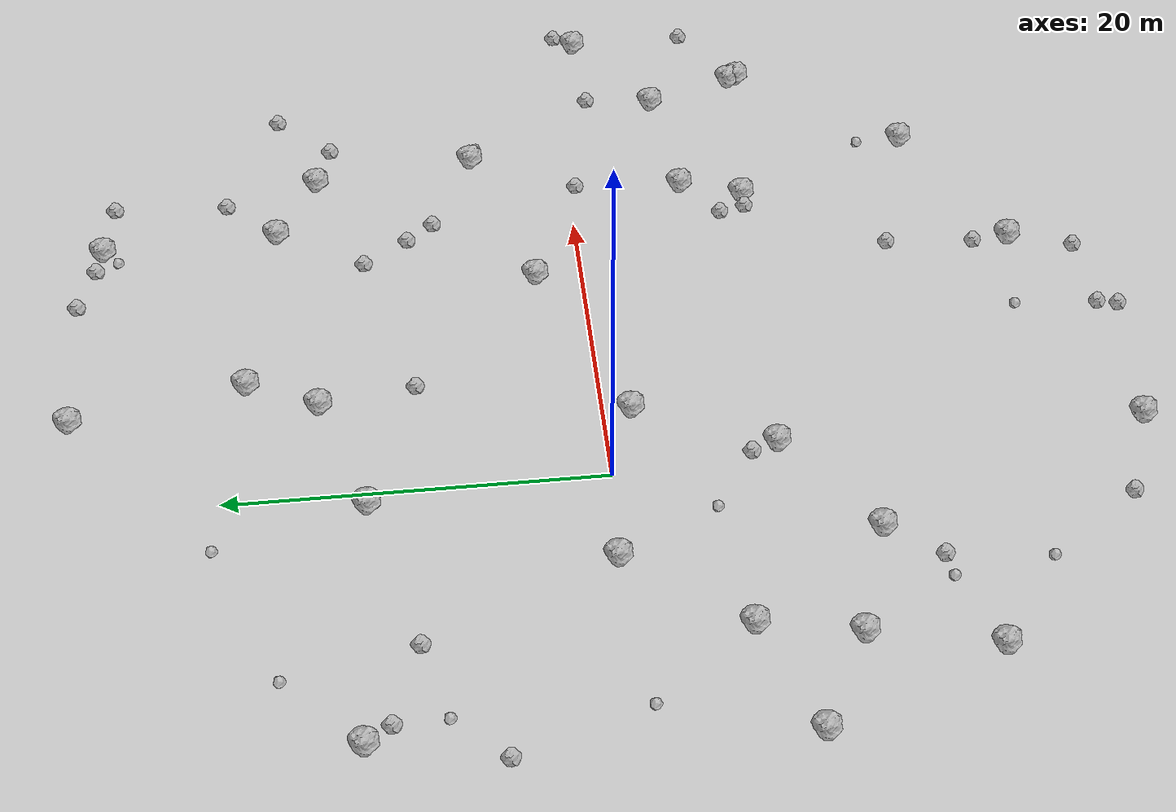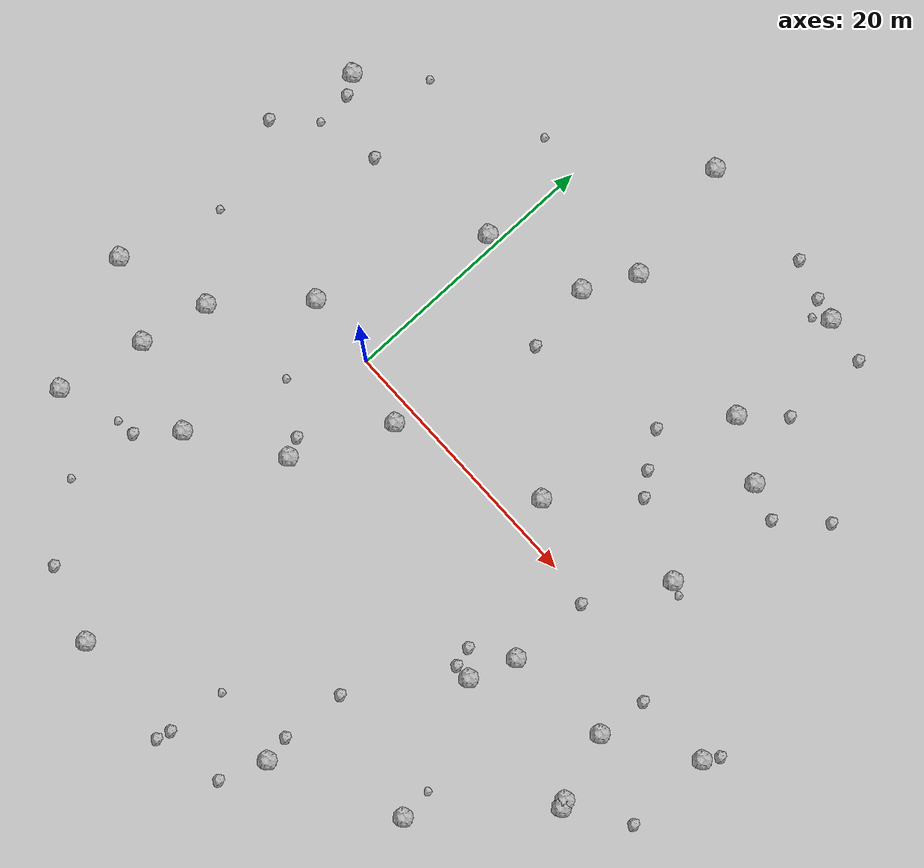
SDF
<sdf version="1.6">
 <world name="default">
  <include><uri>model://custom_ground</uri></include>
  <include><uri>model://sun</uri></include>
  <model name="rock1_0_0">
   <include><uri>model://rock1</uri><pose>-10.692950199762558 -5.694262957405197 0.5 0 0 0</pose></include>
  </model>
  <model name="rock1_0_1">
   <include><uri>model://rock1</uri><pose>-5.658957325771137 0.3496676300299022 0.5 0 0 0</pose></include>
  </model>
  <model name="rock1_0_2">
   <include><uri>model://rock1</uri><pose>30.878403765775516 -5.665382515572148 0.5 0 0 0</pose></include>
  </model>
  <model name="rock1_0_3">
   <include><uri>model://rock1</uri><pose>26.424663385686443 5.518385392285893 0.5 0 0 0</pose></include>
  </model>
  <model name="rock1_0_4">
   <include><uri>model://rock1</uri><pose>15.792059588464603 2.5856343237582777 0.5 0 0 0</pose></include>
  </model>
  <model name="rock1_0_5">
   <include><uri>model://rock1</uri><pose>-13.246311408103328 -17.461088309241497 0.5 0 0 0</pose></include>
  </model>
  <model name="rock1_0_6">
   <include><uri>model://rock1</uri><pose>32.86758371201801 -11.185259424336287 0.5 0 0 0</pose></include>
  </model>
  <model name="rock1_0_7">
   <include><uri>model://rock1</uri><pose>6.664325097783895 27.88895149416907 0.5 0 0 0</pose></include>
  </model>
  <model name="rock1_0_8">
   <include><uri>model://rock1</uri><pose>16.38198587627363 -24.299359834836338 0.5 0 0 0</pose></include>
  </model>
  <model name="rock1_0_9">
   <include><uri>model://rock1</uri><pose>-5.057398701653746 -13.02554828046047 0.5 0 0 0</pose></include>
  </model>
  <model name="rock1_0_10">
   <include><uri>model://rock1</uri><pose>37.102194280965264 -1.5785365843967547 0.5 0 0 0</pose></include>
  </model>
  <model name="rock1_0_11">
   <include><uri>model://rock1</uri><pose>-11.791469590583024 -10.871575741071794 0.5 0 0 0</pose></include>
  </model>
  <model name="rock1_0_12">
   <include><uri>model://rock1</uri><pose>25.21956386524247 14.537611340151152 0.5 0 0 0</pose></include>
  </model>
  <model name="rock1_0_13">
   <include><uri>model://rock1</uri><pose>6.656771046944733 14.855830301617786 0.5 0 0 0</pose></include>
  </model>
  <model name="rock1_0_14">
   <include><uri>model://rock1</uri><pose>21.70451540708693 -9.872676406908322 0.5 0 0 0</pose></include>
  </model>
  <model name="rock1_0_15">
   <include><uri>model://rock1</uri><pose>-17.426758880507297 -8.006383764174984 0.5 0 0 0</pose></include>
  </model>
  <model name="rock1_0_16">
   <include><uri>model://rock1</uri><pose>22.939439406477796 -6.421791323966318 0.5 0 0 0</pose></include>
  </model>
  <model name="rock1_0_17">
   <include><uri>model://rock1</uri><pose>32.63290824903232 -10.668047906462363 0.5 0 0 0</pose></include>
  </model>
  <model name="rock1_0_18">
   <include><uri>model://rock1</uri><pose>1.4147852863394341 -8.720429549901645 0.5 0 0 0</pose></include>
  </model>
  <model name="rock1_0_19">
   <include><uri>model://rock1</uri><pose>8.562848650976996 18.650020384750334 0.5 0 0 0</pose></include>
  </model>
  <model name="rock1_0_20">
   <include><uri>model://rock1</uri><pose>4.707206123170696 -1.466832553625757 0.5 0 0 0</pose></include>
  </model>
  <model name="rock1_0_21">
   <include><uri>model://rock1</uri><pose>1.4558374670019951 -28.152922369738672 0.5 0 0 0</pose></include>
  </model>
  <model name="rock1_0_22">
   <include><uri>model://rock1</uri><pose>25.827717625207548 -19.901970314157342 0.5 0 0 0</pose></include>
  </model>
  <model name="rock1_0_23">
   <include><uri>model://rock1</uri><pose>20.257392305057877 26.57839644833694 0.5 0 0 0</pose></include>
  </model>
  <model name="rock1_0_24">
   <include><uri>model://rock1</uri><pose>-0.7974680756264689 12.608215530764795 0.5 0 0 0</pose></include>
  </model>
  <model name="rock1_0_25">
   <include><uri>model://rock1</uri><pose>20.782729727890988 16.886980213893416 0.5 0 0 0</pose></include>
  </model>
  <model name="rock1_0_26">
   <include><uri>model://rock1</uri><pose>-16.04725043186187 13.31443039328935 0.5 0 0 0</pose></include>
  </model>
  <model name="rock2_0_0">
   <include><uri>model://rock2</uri><pose>20.638853235960738 8.050960482183392 0.3 0 0 0</pose></include>
  </model>
  <model name="rock2_0_1">
   <include><uri>model://rock2</uri><pose>15.073504178447884 -27.78170011377206 0.3 0 0 0</pose></include>
  </model>
  <model name="rock2_0_2">
   <include><uri>model://rock2</uri><pose>30.986093873417147 16.666447960035732 0.3 0 0 0</pose></include>
  </model>
  <model name="rock2_0_3">
   <include><uri>model://rock2</uri><pose>-4.100927348919681 -26.22483491121859 0.3 0 0 0</pose></include>
  </model>
  <model name="rock2_0_4">
   <include><uri>model://rock2</uri><pose>16.023490512058522 -22.260182657310477 0.3 0 0 0</pose></include>
  </model>
  <model name="rock2_0_5">
   <include><uri>model://rock2</uri><pose>15.5834325050471 27.84795376053181 0.3 0 0 0</pose></include>
  </model>
  <model name="rock2_0_6">
   <include><uri>model://rock2</uri><pose>-17.636892457093587 6.647243902127059 0.3 0 0 0</pose></include>
  </model>
  <model name="rock2_0_7">
   <include><uri>model://rock2</uri><pose>9.944081655393965 -29.04863635310034 0.3 0 0 0</pose></include>
  </model>
  <model name="rock2_0_8">
   <include><uri>model://rock2</uri><pose>17.59411086670591 12.048693455836002 0.3 0 0 0</pose></include>
  </model>
  <model name="rock2_0_9">
   <include><uri>model://rock2</uri><pose>37.168319434460045 -8.225393611736305 0.3 0 0 0</pose></include>
  </model>
  <model name="rock2_0_10">
   <include><uri>model://rock2</uri><pose>10.198484901746173 -27.95145127355593 0.3 0 0 0</pose></include>
  </model>
  <model name="rock2_0_11">
   <include><uri>model://rock2</uri><pose>16.412913486327625 -17.372057367566182 0.3 0 0 0</pose></include>
  </model>
  <model name="rock2_0_12">
   <include><uri>model://rock2</uri><pose>27.932761311864752 13.65342839912691 0.3 0 0 0</pose></include>
  </model>
  <model name="rock2_0_13">
   <include><uri>model://rock2</uri><pose>23.416878188849232 19.67437954395713 0.3 0 0 0</pose></include>
  </model>
  <model name="rock2_0_14">
   <include><uri>model://rock2</uri><pose>19.35921809928802 9.556040739827893 0.3 0 0 0</pose></include>
  </model>
  <model name="rock2_0_15">
   <include><uri>model://rock2</uri><pose>20.448273468871108 -9.874352385390694 0.3 0 0 0</pose></include>
  </model>
  <model name="rock2_0_16">
   <include><uri>model://rock2</uri><pose>0.7457566052805333 -7.321420349210278 0.3 0 0 0</pose></include>
  </model>
  <model name="rock2_0_17">
   <include><uri>model://rock2</uri><pose>23.766410973102836 26.02959720718819 0.3 0 0 0</pose></include>
  </model>
  <model name="rock2_0_18">
   <include><uri>model://rock2</uri><pose>-10.46285420992029 10.382005376687289 0.3 0 0 0</pose></include>
  </model>
  <model name="rock2_0_19">
   <include><uri>model://rock2</uri><pose>7.39799267174126 9.704032991559906 0.3 0 0 0</pose></include>
  </model>
  <model name="rock2_0_20">
   <include><uri>model://rock2</uri><pose>31.25550049120428 -1.842081476967202 0.3 0 0 0</pose></include>
  </model>
  <model name="rock2_0_21">
   <include><uri>model://rock2</uri><pose>37.806231001832785 -0.45472168242985944 0.3 0 0 0</pose></include>
  </model>
  <model name="rock2_0_22">
   <include><uri>model://rock2</uri><pose>-15.167472373862964 11.97789261883544 0.3 0 0 0</pose></include>
  </model>
  <model name="rock2_0_23">
   <include><uri>model://rock2</uri><pose>18.519693289685776 26.921126270212454 0.3 0 0 0</pose></include>
  </model>
  <model name="rock2_0_24">
   <include><uri>model://rock2</uri><pose>20.068812102155555 -8.412518394419624 0.3 0 0 0</pose></include>
  </model>
  <model name="rock2_0_25">
   <include><uri>model://rock2</uri><pose>-7.344855967207209 -15.767132884485884 0.3 0 0 0</pose></include>
  </model>
  <model name="rock2_0_26">
   <include><uri>model://rock2</uri><pose>23.183844976291624 -0.38484348632250587 0.3 0 0 0</pose></include>
  </model>
  <model name="rock3_0_0">
   <include><uri>model://rock3</uri><pose>19.222055252697118 25.674795841790143 0.2 0 0 0</pose></include>
  </model>
  <model name="rock3_0_1">
   <include><uri>model://rock3</uri><pose>-15.014882427459334 9.24007987025125 0.2 0 0 0</pose></include>
  </model>
  <model name="rock3_0_2">
   <include><uri>model://rock3</uri><pose>-7.952345531072835 -21.19664097806477 0.2 0 0 0</pose></include>
  </model>
  <model name="rock3_0_3">
   <include><uri>model://rock3</uri><pose>-2.8994995171614804 -5.071678144864684 0.2 0 0 0</pose></include>
  </model>
  <model name="rock3_0_4">
   <include><uri>model://rock3</uri><pose>10.604485431292549 -23.48592891034832 0.2 0 0 0</pose></include>
  </model>
  <model name="rock3_0_5">
   <include><uri>model://rock3</uri><pose>-8.766420709711959 -15.967316734872183 0.2 0 0 0</pose></include>
  </model>
  <model name="rock3_0_6">
   <include><uri>model://rock3</uri><pose>-15.185120155771596 -0.37030785526484067 0.2 0 0 0</pose></include>
  </model>
  <model name="rock3_0_7">
   <include><uri>model://rock3</uri><pose>25.62207411592209 -17.401895640766927 0.2 0 0 0</pose></include>
  </model>
  <model name="rock3_0_8">
   <include><uri>model://rock3</uri><pose>-3.3091948172721857 20.362371637400344 0.2 0 0 0</pose></include>
  </model>
  <model name="rock3_0_9">
   <include><uri>model://rock3</uri><pose>-11.994588061179101 17.11756365710943 0.2 0 0 0</pose></include>
  </model>
  <model name="rock3_0_10">
   <include><uri>model://rock3</uri><pose>27.406581918263292 5.099112665567951 0.2 0 0 0</pose></include>
  </model>
 </world>
</sdf>
